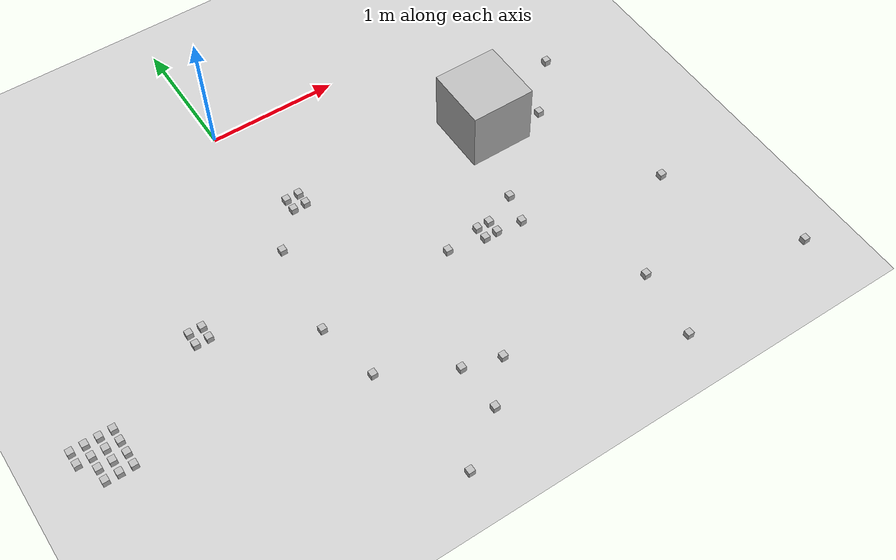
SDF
<sdf version="1.6">
 <world name="default">
  <model name="ground_plane">
   <static>1</static>
   <link name="link">
    <collision name="collision">
     <geometry><plane><normal>0 0 1</normal><size>100 100</size></plane></geometry>
     <surface><friction><ode><mu>100</mu><mu2>50</mu2></ode></friction></surface>
    </collision>
    <visual name="visual">
     <cast_shadows>0</cast_shadows>
     <geometry><plane><normal>0 0 1</normal><size>100 100</size></plane></geometry>
     <material>
      <script><uri>file://media/materials/scripts/gazebo.material</uri><name>Gazebo/Grey</name></script>
     </material>
    </visual>
   </link>
  </model>
  <model name="at33">
   <static>0</static>
   <link name="link">
    <inertial>
     <mass>0.01</mass>
     <inertia><ixx>4e-05</ixx><ixy>0</ixy><ixz>0</ixz><iyy>4e-05</iyy><iyz>0</iyz><izz>4e-05</izz></inertia>
    </inertial>
    <visual name="visual">
     <geometry><box><size>0.05 0.05 0.05</size></box></geometry>
     <material>
      <script>
       <uri>model://at0/materials/scripts</uri>
       <uri>model://at0/materials/textures</uri>
       <name>at0/Diffuse</name>
      </script>
     </material>
    </visual>
    <collision name="collision">
     <geometry><box><size>0.05 0.05 0.05</size></box></geometry>
     <surface><friction><ode><mu>0.8</mu><mu2>0.7</mu2></ode></friction></surface>
    </collision>
   </link>
   <pose>-1.88169 -2.08908 0.025 0 -0 0</pose>
  </model>
  <model name="at34">
   <static>0</static>
   <link name="link">
    <inertial>
     <mass>0.01</mass>
     <inertia><ixx>4e-05</ixx><ixy>0</ixy><ixz>0</ixz><iyy>4e-05</iyy><iyz>0</iyz><izz>4e-05</izz></inertia>
    </inertial>
    <visual name="visual">
     <geometry><box><size>0.05 0.05 0.05</size></box></geometry>
     <material>
      <script>
       <uri>model://at0/materials/scripts</uri>
       <uri>model://at0/materials/textures</uri>
       <name>at0/Diffuse</name>
      </script>
     </material>
    </visual>
    <collision name="collision">
     <geometry><box><size>0.05 0.05 0.05</size></box></geometry>
     <surface><friction><ode><mu>0.8</mu><mu2>0.7</mu2></ode></friction></surface>
    </collision>
   </link>
   <pose>-1.78169 -2.08908 0.025 0 -0 0</pose>
  </model>
  <model name="at35">
   <static>0</static>
   <link name="link">
    <inertial>
     <mass>0.01</mass>
     <inertia><ixx>4e-05</ixx><ixy>0</ixy><ixz>0</ixz><iyy>4e-05</iyy><iyz>0</iyz><izz>4e-05</izz></inertia>
    </inertial>
    <visual name="visual">
     <geometry><box><size>0.05 0.05 0.05</size></box></geometry>
     <material>
      <script>
       <uri>model://at0/materials/scripts</uri>
       <uri>model://at0/materials/textures</uri>
       <name>at0/Diffuse</name>
      </script>
     </material>
    </visual>
    <collision name="collision">
     <geometry><box><size>0.05 0.05 0.05</size></box></geometry>
     <surface><friction><ode><mu>0.8</mu><mu2>0.7</mu2></ode></friction></surface>
    </collision>
   </link>
   <pose>-1.68169 -2.08908 0.025 0 -0 0</pose>
  </model>
  <model name="at37">
   <static>0</static>
   <link name="link">
    <inertial>
     <mass>0.01</mass>
     <inertia><ixx>4e-05</ixx><ixy>0</ixy><ixz>0</ixz><iyy>4e-05</iyy><iyz>0</iyz><izz>4e-05</izz></inertia>
    </inertial>
    <visual name="visual">
     <geometry><box><size>0.05 0.05 0.05</size></box></geometry>
     <material>
      <script>
       <uri>model://at0/materials/scripts</uri>
       <uri>model://at0/materials/textures</uri>
       <name>at0/Diffuse</name>
      </script>
     </material>
    </visual>
    <collision name="collision">
     <geometry><box><size>0.05 0.05 0.05</size></box></geometry>
     <surface><friction><ode><mu>0.8</mu><mu2>0.7</mu2></ode></friction></surface>
    </collision>
   </link>
   <pose>-1.88169 -1.98908 0.025 0 -0 0</pose>
  </model>
  <model name="at38">
   <static>0</static>
   <link name="link">
    <inertial>
     <mass>0.01</mass>
     <inertia><ixx>4e-05</ixx><ixy>0</ixy><ixz>0</ixz><iyy>4e-05</iyy><iyz>0</iyz><izz>4e-05</izz></inertia>
    </inertial>
    <visual name="visual">
     <geometry><box><size>0.05 0.05 0.05</size></box></geometry>
     <material>
      <script>
       <uri>model://at0/materials/scripts</uri>
       <uri>model://at0/materials/textures</uri>
       <name>at0/Diffuse</name>
      </script>
     </material>
    </visual>
    <collision name="collision">
     <geometry><box><size>0.05 0.05 0.05</size></box></geometry>
     <surface><friction><ode><mu>0.8</mu><mu2>0.7</mu2></ode></friction></surface>
    </collision>
   </link>
   <pose>-1.78169 -1.98908 0.025 0 -0 0</pose>
  </model>
  <model name="at39">
   <static>0</static>
   <link name="link">
    <inertial>
     <mass>0.01</mass>
     <inertia><ixx>4e-05</ixx><ixy>0</ixy><ixz>0</ixz><iyy>4e-05</iyy><iyz>0</iyz><izz>4e-05</izz></inertia>
    </inertial>
    <visual name="visual">
     <geometry><box><size>0.05 0.05 0.05</size></box></geometry>
     <material>
      <script>
       <uri>model://at0/materials/scripts</uri>
       <uri>model://at0/materials/textures</uri>
       <name>at0/Diffuse</name>
      </script>
     </material>
    </visual>
    <collision name="collision">
     <geometry><box><size>0.05 0.05 0.05</size></box></geometry>
     <surface><friction><ode><mu>0.8</mu><mu2>0.7</mu2></ode></friction></surface>
    </collision>
   </link>
   <pose>-1.68169 -1.98908 0.025 0 -0 0</pose>
  </model>
  <model name="at40">
   <static>0</static>
   <link name="link">
    <inertial>
     <mass>0.01</mass>
     <inertia><ixx>4e-05</ixx><ixy>0</ixy><ixz>0</ixz><iyy>4e-05</iyy><iyz>0</iyz><izz>4e-05</izz></inertia>
    </inertial>
    <visual name="visual">
     <geometry><box><size>0.05 0.05 0.05</size></box></geometry>
     <material>
      <script>
       <uri>model://at0/materials/scripts</uri>
       <uri>model://at0/materials/textures</uri>
       <name>at0/Diffuse</name>
      </script>
     </material>
    </visual>
    <collision name="collision">
     <geometry><box><size>0.05 0.05 0.05</size></box></geometry>
     <surface><friction><ode><mu>0.8</mu><mu2>0.7</mu2></ode></friction></surface>
    </collision>
   </link>
   <pose>-1.98169 -1.88908 0.025 0 -0 0</pose>
  </model>
  <model name="at41">
   <static>0</static>
   <link name="link">
    <inertial>
     <mass>0.01</mass>
     <inertia><ixx>4e-05</ixx><ixy>0</ixy><ixz>0</ixz><iyy>4e-05</iyy><iyz>0</iyz><izz>4e-05</izz></inertia>
    </inertial>
    <visual name="visual">
     <geometry><box><size>0.05 0.05 0.05</size></box></geometry>
     <material>
      <script>
       <uri>model://at0/materials/scripts</uri>
       <uri>model://at0/materials/textures</uri>
       <name>at0/Diffuse</name>
      </script>
     </material>
    </visual>
    <collision name="collision">
     <geometry><box><size>0.05 0.05 0.05</size></box></geometry>
     <surface><friction><ode><mu>0.8</mu><mu2>0.7</mu2></ode></friction></surface>
    </collision>
   </link>
   <pose>-1.88169 -1.88908 0.025 0 -0 0</pose>
  </model>
  <model name="at42">
   <static>0</static>
   <link name="link">
    <inertial>
     <mass>0.01</mass>
     <inertia><ixx>4e-05</ixx><ixy>0</ixy><ixz>0</ixz><iyy>4e-05</iyy><iyz>0</iyz><izz>4e-05</izz></inertia>
    </inertial>
    <visual name="visual">
     <geometry><box><size>0.05 0.05 0.05</size></box></geometry>
     <material>
      <script>
       <uri>model://at0/materials/scripts</uri>
       <uri>model://at0/materials/textures</uri>
       <name>at0/Diffuse</name>
      </script>
     </material>
    </visual>
    <collision name="collision">
     <geometry><box><size>0.05 0.05 0.05</size></box></geometry>
     <surface><friction><ode><mu>0.8</mu><mu2>0.7</mu2></ode></friction></surface>
    </collision>
   </link>
   <pose>-1.78169 -1.88908 0.025 0 -0 0</pose>
  </model>
  <model name="at43">
   <static>0</static>
   <link name="link">
    <inertial>
     <mass>0.01</mass>
     <inertia><ixx>4e-05</ixx><ixy>0</ixy><ixz>0</ixz><iyy>4e-05</iyy><iyz>0</iyz><izz>4e-05</izz></inertia>
    </inertial>
    <visual name="visual">
     <geometry><box><size>0.05 0.05 0.05</size></box></geometry>
     <material>
      <script>
       <uri>model://at0/materials/scripts</uri>
       <uri>model://at0/materials/textures</uri>
       <name>at0/Diffuse</name>
      </script>
     </material>
    </visual>
    <collision name="collision">
     <geometry><box><size>0.05 0.05 0.05</size></box></geometry>
     <surface><friction><ode><mu>0.8</mu><mu2>0.7</mu2></ode></friction></surface>
    </collision>
   </link>
   <pose>-1.68169 -1.88908 0.025 0 -0 0</pose>
  </model>
  <model name="at44">
   <static>0</static>
   <link name="link">
    <inertial>
     <mass>0.01</mass>
     <inertia><ixx>4e-05</ixx><ixy>0</ixy><ixz>0</ixz><iyy>4e-05</iyy><iyz>0</iyz><izz>4e-05</izz></inertia>
    </inertial>
    <visual name="visual">
     <geometry><box><size>0.05 0.05 0.05</size></box></geometry>
     <material>
      <script>
       <uri>model://at0/materials/scripts</uri>
       <uri>model://at0/materials/textures</uri>
       <name>at0/Diffuse</name>
      </script>
     </material>
    </visual>
    <collision name="collision">
     <geometry><box><size>0.05 0.05 0.05</size></box></geometry>
     <surface><friction><ode><mu>0.8</mu><mu2>0.7</mu2></ode></friction></surface>
    </collision>
   </link>
   <pose>-1.98169 -1.78908 0.025 0 -0 0</pose>
  </model>
  <model name="at45">
   <static>0</static>
   <link name="link">
    <inertial>
     <mass>0.01</mass>
     <inertia><ixx>4e-05</ixx><ixy>0</ixy><ixz>0</ixz><iyy>4e-05</iyy><iyz>0</iyz><izz>4e-05</izz></inertia>
    </inertial>
    <visual name="visual">
     <geometry><box><size>0.05 0.05 0.05</size></box></geometry>
     <material>
      <script>
       <uri>model://at0/materials/scripts</uri>
       <uri>model://at0/materials/textures</uri>
       <name>at0/Diffuse</name>
      </script>
     </material>
    </visual>
    <collision name="collision">
     <geometry><box><size>0.05 0.05 0.05</size></box></geometry>
     <surface><friction><ode><mu>0.8</mu><mu2>0.7</mu2></ode></friction></surface>
    </collision>
   </link>
   <pose>-1.88169 -1.78908 0.025 0 -0 0</pose>
  </model>
  <model name="at46">
   <static>0</static>
   <link name="link">
    <inertial>
     <mass>0.01</mass>
     <inertia><ixx>4e-05</ixx><ixy>0</ixy><ixz>0</ixz><iyy>4e-05</iyy><iyz>0</iyz><izz>4e-05</izz></inertia>
    </inertial>
    <visual name="visual">
     <geometry><box><size>0.05 0.05 0.05</size></box></geometry>
     <material>
      <script>
       <uri>model://at0/materials/scripts</uri>
       <uri>model://at0/materials/textures</uri>
       <name>at0/Diffuse</name>
      </script>
     </material>
    </visual>
    <collision name="collision">
     <geometry><box><size>0.05 0.05 0.05</size></box></geometry>
     <surface><friction><ode><mu>0.8</mu><mu2>0.7</mu2></ode></friction></surface>
    </collision>
   </link>
   <pose>-1.78169 -1.78908 0.025 0 -0 0</pose>
  </model>
  <model name="at47">
   <static>0</static>
   <link name="link">
    <inertial>
     <mass>0.01</mass>
     <inertia><ixx>4e-05</ixx><ixy>0</ixy><ixz>0</ixz><iyy>4e-05</iyy><iyz>0</iyz><izz>4e-05</izz></inertia>
    </inertial>
    <visual name="visual">
     <geometry><box><size>0.05 0.05 0.05</size></box></geometry>
     <material>
      <script>
       <uri>model://at0/materials/scripts</uri>
       <uri>model://at0/materials/textures</uri>
       <name>at0/Diffuse</name>
      </script>
     </material>
    </visual>
    <collision name="collision">
     <geometry><box><size>0.05 0.05 0.05</size></box></geometry>
     <surface><friction><ode><mu>0.8</mu><mu2>0.7</mu2></ode></friction></surface>
    </collision>
   </link>
   <pose>-1.68169 -1.78908 0.025 0 -0 0</pose>
  </model>
  <model name="at64">
   <static>0</static>
   <link name="link">
    <inertial>
     <mass>0.01</mass>
     <inertia><ixx>4e-05</ixx><ixy>0</ixy><ixz>0</ixz><iyy>4e-05</iyy><iyz>0</iyz><izz>4e-05</izz></inertia>
    </inertial>
    <visual name="visual">
     <geometry><box><size>0.05 0.05 0.05</size></box></geometry>
     <material>
      <script>
       <uri>model://at0/materials/scripts</uri>
       <uri>model://at0/materials/textures</uri>
       <name>at0/Diffuse</name>
      </script>
     </material>
    </visual>
    <collision name="collision">
     <geometry><box><size>0.05 0.05 0.05</size></box></geometry>
     <surface><friction><ode><mu>0.8</mu><mu2>0.7</mu2></ode></friction></surface>
    </collision>
   </link>
   <pose>1.15344 -1.87761 0.025 0 -0 0</pose>
  </model>
  <model name="at65">
   <static>0</static>
   <link name="link">
    <inertial>
     <mass>0.01</mass>
     <inertia><ixx>4e-05</ixx><ixy>0</ixy><ixz>0</ixz><iyy>4e-05</iyy><iyz>0</iyz><izz>4e-05</izz></inertia>
    </inertial>
    <visual name="visual">
     <geometry><box><size>0.05 0.05 0.05</size></box></geometry>
     <material>
      <script>
       <uri>model://at0/materials/scripts</uri>
       <uri>model://at0/materials/textures</uri>
       <name>at0/Diffuse</name>
      </script>
     </material>
    </visual>
    <collision name="collision">
     <geometry><box><size>0.05 0.05 0.05</size></box></geometry>
     <surface><friction><ode><mu>0.8</mu><mu2>0.7</mu2></ode></friction></surface>
    </collision>
   </link>
   <pose>1.25344 -1.87761 0.025 0 -0 0</pose>
  </model>
  <model name="at66">
   <static>0</static>
   <link name="link">
    <inertial>
     <mass>0.01</mass>
     <inertia><ixx>4e-05</ixx><ixy>0</ixy><ixz>0</ixz><iyy>4e-05</iyy><iyz>0</iyz><izz>4e-05</izz></inertia>
    </inertial>
    <visual name="visual">
     <geometry><box><size>0.05 0.05 0.05</size></box></geometry>
     <material>
      <script>
       <uri>model://at0/materials/scripts</uri>
       <uri>model://at0/materials/textures</uri>
       <name>at0/Diffuse</name>
      </script>
     </material>
    </visual>
    <collision name="collision">
     <geometry><box><size>0.05 0.05 0.05</size></box></geometry>
     <surface><friction><ode><mu>0.8</mu><mu2>0.7</mu2></ode></friction></surface>
    </collision>
   </link>
   <pose>1.15344 -1.77761 0.025 0 -0 0</pose>
  </model>
  <model name="at67">
   <static>0</static>
   <link name="link">
    <inertial>
     <mass>0.01</mass>
     <inertia><ixx>4e-05</ixx><ixy>0</ixy><ixz>0</ixz><iyy>4e-05</iyy><iyz>0</iyz><izz>4e-05</izz></inertia>
    </inertial>
    <visual name="visual">
     <geometry><box><size>0.05 0.05 0.05</size></box></geometry>
     <material>
      <script>
       <uri>model://at0/materials/scripts</uri>
       <uri>model://at0/materials/textures</uri>
       <name>at0/Diffuse</name>
      </script>
     </material>
    </visual>
    <collision name="collision">
     <geometry><box><size>0.05 0.05 0.05</size></box></geometry>
     <surface><friction><ode><mu>0.8</mu><mu2>0.7</mu2></ode></friction></surface>
    </collision>
   </link>
   <pose>1.25344 -1.77761 0.025 0 -0 0</pose>
  </model>
  <model name="at72">
   <static>0</static>
   <link name="link">
    <inertial>
     <mass>0.01</mass>
     <inertia><ixx>4e-05</ixx><ixy>0</ixy><ixz>0</ixz><iyy>4e-05</iyy><iyz>0</iyz><izz>4e-05</izz></inertia>
    </inertial>
    <visual name="visual">
     <geometry><box><size>0.05 0.05 0.05</size></box></geometry>
     <material>
      <script>
       <uri>model://at0/materials/scripts</uri>
       <uri>model://at0/materials/textures</uri>
       <name>at0/Diffuse</name>
      </script>
     </material>
    </visual>
    <collision name="collision">
     <geometry><box><size>0.05 0.05 0.05</size></box></geometry>
     <surface><friction><ode><mu>0.8</mu><mu2>0.7</mu2></ode></friction></surface>
    </collision>
   </link>
   <pose>0.158221 -0.902096 0.025 0 -0 0</pose>
  </model>
  <model name="at73">
   <static>0</static>
   <link name="link">
    <inertial>
     <mass>0.01</mass>
     <inertia><ixx>4e-05</ixx><ixy>0</ixy><ixz>0</ixz><iyy>4e-05</iyy><iyz>0</iyz><izz>4e-05</izz></inertia>
    </inertial>
    <visual name="visual">
     <geometry><box><size>0.05 0.05 0.05</size></box></geometry>
     <material>
      <script>
       <uri>model://at0/materials/scripts</uri>
       <uri>model://at0/materials/textures</uri>
       <name>at0/Diffuse</name>
      </script>
     </material>
    </visual>
    <collision name="collision">
     <geometry><box><size>0.05 0.05 0.05</size></box></geometry>
     <surface><friction><ode><mu>0.8</mu><mu2>0.7</mu2></ode></friction></surface>
    </collision>
   </link>
   <pose>0.258221 -0.902096 0.025 0 -0 0</pose>
  </model>
  <model name="at74">
   <static>0</static>
   <link name="link">
    <inertial>
     <mass>0.01</mass>
     <inertia><ixx>4e-05</ixx><ixy>0</ixy><ixz>0</ixz><iyy>4e-05</iyy><iyz>0</iyz><izz>4e-05</izz></inertia>
    </inertial>
    <visual name="visual">
     <geometry><box><size>0.05 0.05 0.05</size></box></geometry>
     <material>
      <script>
       <uri>model://at0/materials/scripts</uri>
       <uri>model://at0/materials/textures</uri>
       <name>at0/Diffuse</name>
      </script>
     </material>
    </visual>
    <collision name="collision">
     <geometry><box><size>0.05 0.05 0.05</size></box></geometry>
     <surface><friction><ode><mu>0.8</mu><mu2>0.7</mu2></ode></friction></surface>
    </collision>
   </link>
   <pose>0.158221 -0.802096 0.025 0 -0 0</pose>
  </model>
  <model name="at75">
   <static>0</static>
   <link name="link">
    <inertial>
     <mass>0.01</mass>
     <inertia><ixx>4e-05</ixx><ixy>0</ixy><ixz>0</ixz><iyy>4e-05</iyy><iyz>0</iyz><izz>4e-05</izz></inertia>
    </inertial>
    <visual name="visual">
     <geometry><box><size>0.05 0.05 0.05</size></box></geometry>
     <material>
      <script>
       <uri>model://at0/materials/scripts</uri>
       <uri>model://at0/materials/textures</uri>
       <name>at0/Diffuse</name>
      </script>
     </material>
    </visual>
    <collision name="collision">
     <geometry><box><size>0.05 0.05 0.05</size></box></geometry>
     <surface><friction><ode><mu>0.8</mu><mu2>0.7</mu2></ode></friction></surface>
    </collision>
   </link>
   <pose>0.258221 -0.802096 0.025 0 -0 0</pose>
  </model>
  <model name="at84">
   <static>0</static>
   <link name="link">
    <inertial>
     <mass>0.01</mass>
     <inertia><ixx>4e-05</ixx><ixy>0</ixy><ixz>0</ixz><iyy>4e-05</iyy><iyz>0</iyz><izz>4e-05</izz></inertia>
    </inertial>
    <visual name="visual">
     <geometry><box><size>0.05 0.05 0.05</size></box></geometry>
     <material>
      <script>
       <uri>model://at0/materials/scripts</uri>
       <uri>model://at0/materials/textures</uri>
       <name>at0/Diffuse</name>
      </script>
     </material>
    </visual>
    <collision name="collision">
     <geometry><box><size>0.05 0.05 0.05</size></box></geometry>
     <surface><friction><ode><mu>0.8</mu><mu2>0.7</mu2></ode></friction></surface>
    </collision>
   </link>
   <pose>-0.949982 -1.52108 0.025 0 -0 0</pose>
  </model>
  <model name="at85">
   <static>0</static>
   <link name="link">
    <inertial>
     <mass>0.01</mass>
     <inertia><ixx>4e-05</ixx><ixy>0</ixy><ixz>0</ixz><iyy>4e-05</iyy><iyz>0</iyz><izz>4e-05</izz></inertia>
    </inertial>
    <visual name="visual">
     <geometry><box><size>0.05 0.05 0.05</size></box></geometry>
     <material>
      <script>
       <uri>model://at0/materials/scripts</uri>
       <uri>model://at0/materials/textures</uri>
       <name>at0/Diffuse</name>
      </script>
     </material>
    </visual>
    <collision name="collision">
     <geometry><box><size>0.05 0.05 0.05</size></box></geometry>
     <surface><friction><ode><mu>0.8</mu><mu2>0.7</mu2></ode></friction></surface>
    </collision>
   </link>
   <pose>-0.849982 -1.52108 0.025 0 -0 0</pose>
  </model>
  <model name="at86">
   <static>0</static>
   <link name="link">
    <inertial>
     <mass>0.01</mass>
     <inertia><ixx>4e-05</ixx><ixy>0</ixy><ixz>0</ixz><iyy>4e-05</iyy><iyz>0</iyz><izz>4e-05</izz></inertia>
    </inertial>
    <visual name="visual">
     <geometry><box><size>0.05 0.05 0.05</size></box></geometry>
     <material>
      <script>
       <uri>model://at0/materials/scripts</uri>
       <uri>model://at0/materials/textures</uri>
       <name>at0/Diffuse</name>
      </script>
     </material>
    </visual>
    <collision name="collision">
     <geometry><box><size>0.05 0.05 0.05</size></box></geometry>
     <surface><friction><ode><mu>0.8</mu><mu2>0.7</mu2></ode></friction></surface>
    </collision>
   </link>
   <pose>-0.949982 -1.42108 0.025 0 -0 0</pose>
  </model>
  <model name="at87">
   <static>0</static>
   <link name="link">
    <inertial>
     <mass>0.01</mass>
     <inertia><ixx>4e-05</ixx><ixy>0</ixy><ixz>0</ixz><iyy>4e-05</iyy><iyz>0</iyz><izz>4e-05</izz></inertia>
    </inertial>
    <visual name="visual">
     <geometry><box><size>0.05 0.05 0.05</size></box></geometry>
     <material>
      <script>
       <uri>model://at0/materials/scripts</uri>
       <uri>model://at0/materials/textures</uri>
       <name>at0/Diffuse</name>
      </script>
     </material>
    </visual>
    <collision name="collision">
     <geometry><box><size>0.05 0.05 0.05</size></box></geometry>
     <surface><friction><ode><mu>0.8</mu><mu2>0.7</mu2></ode></friction></surface>
    </collision>
   </link>
   <pose>-0.849982 -1.42108 0.025 0 -0 0</pose>
  </model>
  <model name="at88">
   <static>0</static>
   <link name="link">
    <inertial>
     <mass>0.01</mass>
     <inertia><ixx>4e-05</ixx><ixy>0</ixy><ixz>0</ixz><iyy>4e-05</iyy><iyz>0</iyz><izz>4e-05</izz></inertia>
    </inertial>
    <visual name="visual">
     <geometry><box><size>0.05 0.05 0.05</size></box></geometry>
     <material>
      <script>
       <uri>model://at0/materials/scripts</uri>
       <uri>model://at0/materials/textures</uri>
       <name>at0/Diffuse</name>
      </script>
     </material>
    </visual>
    <collision name="collision">
     <geometry><box><size>0.05 0.05 0.05</size></box></geometry>
     <surface><friction><ode><mu>0.8</mu><mu2>0.7</mu2></ode></friction></surface>
    </collision>
   </link>
   <pose>2.50878 -0.748782 0.025 0 -0 0</pose>
  </model>
  <model name="at96">
   <static>0</static>
   <link name="link">
    <inertial>
     <mass>0.01</mass>
     <inertia><ixx>4e-05</ixx><ixy>0</ixy><ixz>0</ixz><iyy>4e-05</iyy><iyz>0</iyz><izz>4e-05</izz></inertia>
    </inertial>
    <visual name="visual">
     <geometry><box><size>0.05 0.05 0.05</size></box></geometry>
     <material>
      <script>
       <uri>model://at0/materials/scripts</uri>
       <uri>model://at0/materials/textures</uri>
       <name>at0/Diffuse</name>
      </script>
     </material>
    </visual>
    <collision name="collision">
     <geometry><box><size>0.05 0.05 0.05</size></box></geometry>
     <surface><friction><ode><mu>0.8</mu><mu2>0.7</mu2></ode></friction></surface>
    </collision>
   </link>
   <pose>2.53938 -2.12924 0.025 0 -0 0</pose>
  </model>
  <model name="at100">
   <static>0</static>
   <link name="link">
    <inertial>
     <mass>0.01</mass>
     <inertia><ixx>4e-05</ixx><ixy>0</ixy><ixz>0</ixz><iyy>4e-05</iyy><iyz>0</iyz><izz>4e-05</izz></inertia>
    </inertial>
    <visual name="visual">
     <geometry><box><size>0.05 0.05 0.05</size></box></geometry>
     <material>
      <script>
       <uri>model://at0/materials/scripts</uri>
       <uri>model://at0/materials/textures</uri>
       <name>at0/Diffuse</name>
      </script>
     </material>
    </visual>
    <collision name="collision">
     <geometry><box><size>0.05 0.05 0.05</size></box></geometry>
     <surface><friction><ode><mu>0.8</mu><mu2>0.7</mu2></ode></friction></surface>
    </collision>
   </link>
   <pose>-0.090527 -2.37379 0.025 0 -0 0</pose>
  </model>
  <model name="at103">
   <static>0</static>
   <link name="link">
    <inertial>
     <mass>0.01</mass>
     <inertia><ixx>4e-05</ixx><ixy>0</ixy><ixz>0</ixz><iyy>4e-05</iyy><iyz>0</iyz><izz>4e-05</izz></inertia>
    </inertial>
    <visual name="visual">
     <geometry><box><size>0.05 0.05 0.05</size></box></geometry>
     <material>
      <script>
       <uri>model://at0/materials/scripts</uri>
       <uri>model://at0/materials/textures</uri>
       <name>at0/Diffuse</name>
      </script>
     </material>
    </visual>
    <collision name="collision">
     <geometry><box><size>0.05 0.05 0.05</size></box></geometry>
     <surface><friction><ode><mu>0.8</mu><mu2>0.7</mu2></ode></friction></surface>
    </collision>
   </link>
   <pose>0.044919 -3.30943 0.025 0 -0 0</pose>
  </model>
  <model name="at104">
   <static>0</static>
   <link name="link">
    <inertial>
     <mass>0.01</mass>
     <inertia><ixx>4e-05</ixx><ixy>0</ixy><ixz>0</ixz><iyy>4e-05</iyy><iyz>0</iyz><izz>4e-05</izz></inertia>
    </inertial>
    <visual name="visual">
     <geometry><box><size>0.05 0.05 0.05</size></box></geometry>
     <material>
      <script>
       <uri>model://at0/materials/scripts</uri>
       <uri>model://at0/materials/textures</uri>
       <name>at0/Diffuse</name>
      </script>
     </material>
    </visual>
    <collision name="collision">
     <geometry><box><size>0.05 0.05 0.05</size></box></geometry>
     <surface><friction><ode><mu>0.8</mu><mu2>0.7</mu2></ode></friction></surface>
    </collision>
   </link>
   <pose>1.45238 -1.8995 0.025 0 -0 0</pose>
  </model>
  <model name="at105">
   <static>0</static>
   <link name="link">
    <inertial>
     <mass>0.01</mass>
     <inertia><ixx>4e-05</ixx><ixy>0</ixy><ixz>0</ixz><iyy>4e-05</iyy><iyz>0</iyz><izz>4e-05</izz></inertia>
    </inertial>
    <visual name="visual">
     <geometry><box><size>0.05 0.05 0.05</size></box></geometry>
     <material>
      <script>
       <uri>model://at0/materials/scripts</uri>
       <uri>model://at0/materials/textures</uri>
       <name>at0/Diffuse</name>
      </script>
     </material>
    </visual>
    <collision name="collision">
     <geometry><box><size>0.05 0.05 0.05</size></box></geometry>
     <surface><friction><ode><mu>0.8</mu><mu2>0.7</mu2></ode></friction></surface>
    </collision>
   </link>
   <pose>-0.187215 -1.8894 0.025 0 -0 0</pose>
  </model>
  <model name="at106">
   <static>0</static>
   <link name="link">
    <inertial>
     <mass>0.01</mass>
     <inertia><ixx>4e-05</ixx><ixy>0</ixy><ixz>0</ixz><iyy>4e-05</iyy><iyz>0</iyz><izz>4e-05</izz></inertia>
    </inertial>
    <visual name="visual">
     <geometry><box><size>0.05 0.05 0.05</size></box></geometry>
     <material>
      <script>
       <uri>model://at0/materials/scripts</uri>
       <uri>model://at0/materials/textures</uri>
       <name>at0/Diffuse</name>
      </script>
     </material>
    </visual>
    <collision name="collision">
     <geometry><box><size>0.05 0.05 0.05</size></box></geometry>
     <surface><friction><ode><mu>0.8</mu><mu2>0.7</mu2></ode></friction></surface>
    </collision>
   </link>
   <pose>0.6984 -2.74071 0.025 0 -0 0</pose>
  </model>
  <model name="at109">
   <static>0</static>
   <link name="link">
    <inertial>
     <mass>0.01</mass>
     <inertia><ixx>4e-05</ixx><ixy>0</ixy><ixz>0</ixz><iyy>4e-05</iyy><iyz>0</iyz><izz>4e-05</izz></inertia>
    </inertial>
    <visual name="visual">
     <geometry><box><size>0.05 0.05 0.05</size></box></geometry>
     <material>
      <script>
       <uri>model://at0/materials/scripts</uri>
       <uri>model://at0/materials/textures</uri>
       <name>at0/Diffuse</name>
      </script>
     </material>
    </visual>
    <collision name="collision">
     <geometry><box><size>0.05 0.05 0.05</size></box></geometry>
     <surface><friction><ode><mu>0.8</mu><mu2>0.7</mu2></ode></friction></surface>
    </collision>
   </link>
   <pose>3.01171 -3.14529 0.025 0 -0 0</pose>
  </model>
  <model name="at111">
   <static>0</static>
   <link name="link">
    <inertial>
     <mass>0.01</mass>
     <inertia><ixx>4e-05</ixx><ixy>0</ixy><ixz>0</ixz><iyy>4e-05</iyy><iyz>0</iyz><izz>4e-05</izz></inertia>
    </inertial>
    <visual name="visual">
     <geometry><box><size>0.05 0.05 0.05</size></box></geometry>
     <material>
      <script>
       <uri>model://at0/materials/scripts</uri>
       <uri>model://at0/materials/textures</uri>
       <name>at0/Diffuse</name>
      </script>
     </material>
    </visual>
    <collision name="collision">
     <geometry><box><size>0.05 0.05 0.05</size></box></geometry>
     <surface><friction><ode><mu>0.8</mu><mu2>0.7</mu2></ode></friction></surface>
    </collision>
   </link>
   <pose>2.1545 -1.14259 0.025 0 -0 0</pose>
  </model>
  <model name="at115">
   <static>0</static>
   <link name="link">
    <inertial>
     <mass>0.01</mass>
     <inertia><ixx>4e-05</ixx><ixy>0</ixy><ixz>0</ixz><iyy>4e-05</iyy><iyz>0</iyz><izz>4e-05</izz></inertia>
    </inertial>
    <visual name="visual">
     <geometry><box><size>0.05 0.05 0.05</size></box></geometry>
     <material>
      <script>
       <uri>model://at0/materials/scripts</uri>
       <uri>model://at0/materials/textures</uri>
       <name>at0/Diffuse</name>
      </script>
     </material>
    </visual>
    <collision name="collision">
     <geometry><box><size>0.05 0.05 0.05</size></box></geometry>
     <surface><friction><ode><mu>0.8</mu><mu2>0.7</mu2></ode></friction></surface>
    </collision>
   </link>
   <pose>1.83204 -3.29444 0.025 0 -0 0</pose>
  </model>
  <model name="at117">
   <static>0</static>
   <link name="link">
    <inertial>
     <mass>0.01</mass>
     <inertia><ixx>4e-05</ixx><ixy>0</ixy><ixz>0</ixz><iyy>4e-05</iyy><iyz>0</iyz><izz>4e-05</izz></inertia>
    </inertial>
    <visual name="visual">
     <geometry><box><size>0.05 0.05 0.05</size></box></geometry>
     <material>
      <script>
       <uri>model://at0/materials/scripts</uri>
       <uri>model://at0/materials/textures</uri>
       <name>at0/Diffuse</name>
      </script>
     </material>
    </visual>
    <collision name="collision">
     <geometry><box><size>0.05 0.05 0.05</size></box></geometry>
     <surface><friction><ode><mu>0.8</mu><mu2>0.7</mu2></ode></friction></surface>
    </collision>
   </link>
   <pose>0.873551 -1.82174 0.025 0 -0 0</pose>
  </model>
  <model name="at118">
   <static>0</static>
   <link name="link">
    <inertial>
     <mass>0.01</mass>
     <inertia><ixx>4e-05</ixx><ixy>0</ixy><ixz>0</ixz><iyy>4e-05</iyy><iyz>0</iyz><izz>4e-05</izz></inertia>
    </inertial>
    <visual name="visual">
     <geometry><box><size>0.05 0.05 0.05</size></box></geometry>
     <material>
      <script>
       <uri>model://at0/materials/scripts</uri>
       <uri>model://at0/materials/textures</uri>
       <name>at0/Diffuse</name>
      </script>
     </material>
    </visual>
    <collision name="collision">
     <geometry><box><size>0.05 0.05 0.05</size></box></geometry>
     <surface><friction><ode><mu>0.8</mu><mu2>0.7</mu2></ode></friction></surface>
    </collision>
   </link>
   <pose>-0.087748 -1.17407 0.025 0 -0 0</pose>
  </model>
  <model name="at120">
   <static>0</static>
   <link name="link">
    <inertial>
     <mass>0.01</mass>
     <inertia><ixx>4e-05</ixx><ixy>0</ixy><ixz>0</ixz><iyy>4e-05</iyy><iyz>0</iyz><izz>4e-05</izz></inertia>
    </inertial>
    <visual name="visual">
     <geometry><box><size>0.05 0.05 0.05</size></box></geometry>
     <material>
      <script>
       <uri>model://at0/materials/scripts</uri>
       <uri>model://at0/materials/textures</uri>
       <name>at0/Diffuse</name>
      </script>
     </material>
    </visual>
    <collision name="collision">
     <geometry><box><size>0.05 0.05 0.05</size></box></geometry>
     <surface><friction><ode><mu>0.8</mu><mu2>0.7</mu2></ode></friction></surface>
    </collision>
   </link>
   <pose>0.436537 -3.02285 0.025 0 -0 0</pose>
  </model>
  <model name="at122">
   <static>0</static>
   <link name="link">
    <inertial>
     <mass>0.01</mass>
     <inertia><ixx>4e-05</ixx><ixy>0</ixy><ixz>0</ixz><iyy>4e-05</iyy><iyz>0</iyz><izz>4e-05</izz></inertia>
    </inertial>
    <visual name="visual">
     <geometry><box><size>0.05 0.05 0.05</size></box></geometry>
     <material>
      <script>
       <uri>model://at0/materials/scripts</uri>
       <uri>model://at0/materials/textures</uri>
       <name>at0/Diffuse</name>
      </script>
     </material>
    </visual>
    <collision name="collision">
     <geometry><box><size>0.05 0.05 0.05</size></box></geometry>
     <surface><friction><ode><mu>0.8</mu><mu2>0.7</mu2></ode></friction></surface>
    </collision>
   </link>
   <pose>1.50995 -1.66974 0.025 0 -0 0</pose>
  </model>
  <model name="at125">
   <static>0</static>
   <link name="link">
    <inertial>
     <mass>0.01</mass>
     <inertia><ixx>4e-05</ixx><ixy>0</ixy><ixz>0</ixz><iyy>4e-05</iyy><iyz>0</iyz><izz>4e-05</izz></inertia>
    </inertial>
    <visual name="visual">
     <geometry><box><size>0.05 0.05 0.05</size></box></geometry>
     <material>
      <script>
       <uri>model://at0/materials/scripts</uri>
       <uri>model://at0/materials/textures</uri>
       <name>at0/Diffuse</name>
      </script>
     </material>
    </visual>
    <collision name="collision">
     <geometry><box><size>0.05 0.05 0.05</size></box></geometry>
     <surface><friction><ode><mu>0.8</mu><mu2>0.7</mu2></ode></friction></surface>
    </collision>
   </link>
   <pose>0.419268 -2.66053 0.025 0 -0 0</pose>
  </model>
  <model name="at127">
   <static>0</static>
   <link name="link">
    <inertial>
     <mass>0.01</mass>
     <inertia><ixx>4e-05</ixx><ixy>0</ixy><ixz>0</ixz><iyy>4e-05</iyy><iyz>0</iyz><izz>4e-05</izz></inertia>
    </inertial>
    <visual name="visual">
     <geometry><box><size>0.05 0.05 0.05</size></box></geometry>
     <material>
      <script>
       <uri>model://at0/materials/scripts</uri>
       <uri>model://at0/materials/textures</uri>
       <name>at0/Diffuse</name>
      </script>
     </material>
    </visual>
    <collision name="collision">
     <geometry><box><size>0.05 0.05 0.05</size></box></geometry>
     <surface><friction><ode><mu>0.8</mu><mu2>0.7</mu2></ode></friction></surface>
    </collision>
   </link>
   <pose>1.89722 -2.75361 0.025 0 -0 0</pose>
  </model>
  <model name="box_0">
   <pose>1.72061 -1.02783 0.25 0 -0 0</pose>
   <static>1</static>
   <link name="link">
    <inertial>
     <mass>0.01</mass>
     <inertia><ixx>4e-05</ixx><ixy>0</ixy><ixz>0</ixz><iyy>4e-05</iyy><iyz>0</iyz><izz>4e-05</izz></inertia>
    </inertial>
    <visual name="visual">
     <geometry><box><size>0.5 0.5 0.5</size></box></geometry>
     <material>
      <script>
       <uri>model://box/materials/scripts</uri>
       <uri>model://box/materials/textures</uri>
       <name>box/Diffuse</name>
      </script>
     </material>
    </visual>
    <collision name="collision">
     <geometry><box><size>0.5 0.5 0.5</size></box></geometry>
     <surface><friction><ode><mu>0.8</mu><mu2>0.7</mu2></ode></friction></surface>
    </collision>
   </link>
  </model>
 </world>
</sdf>
